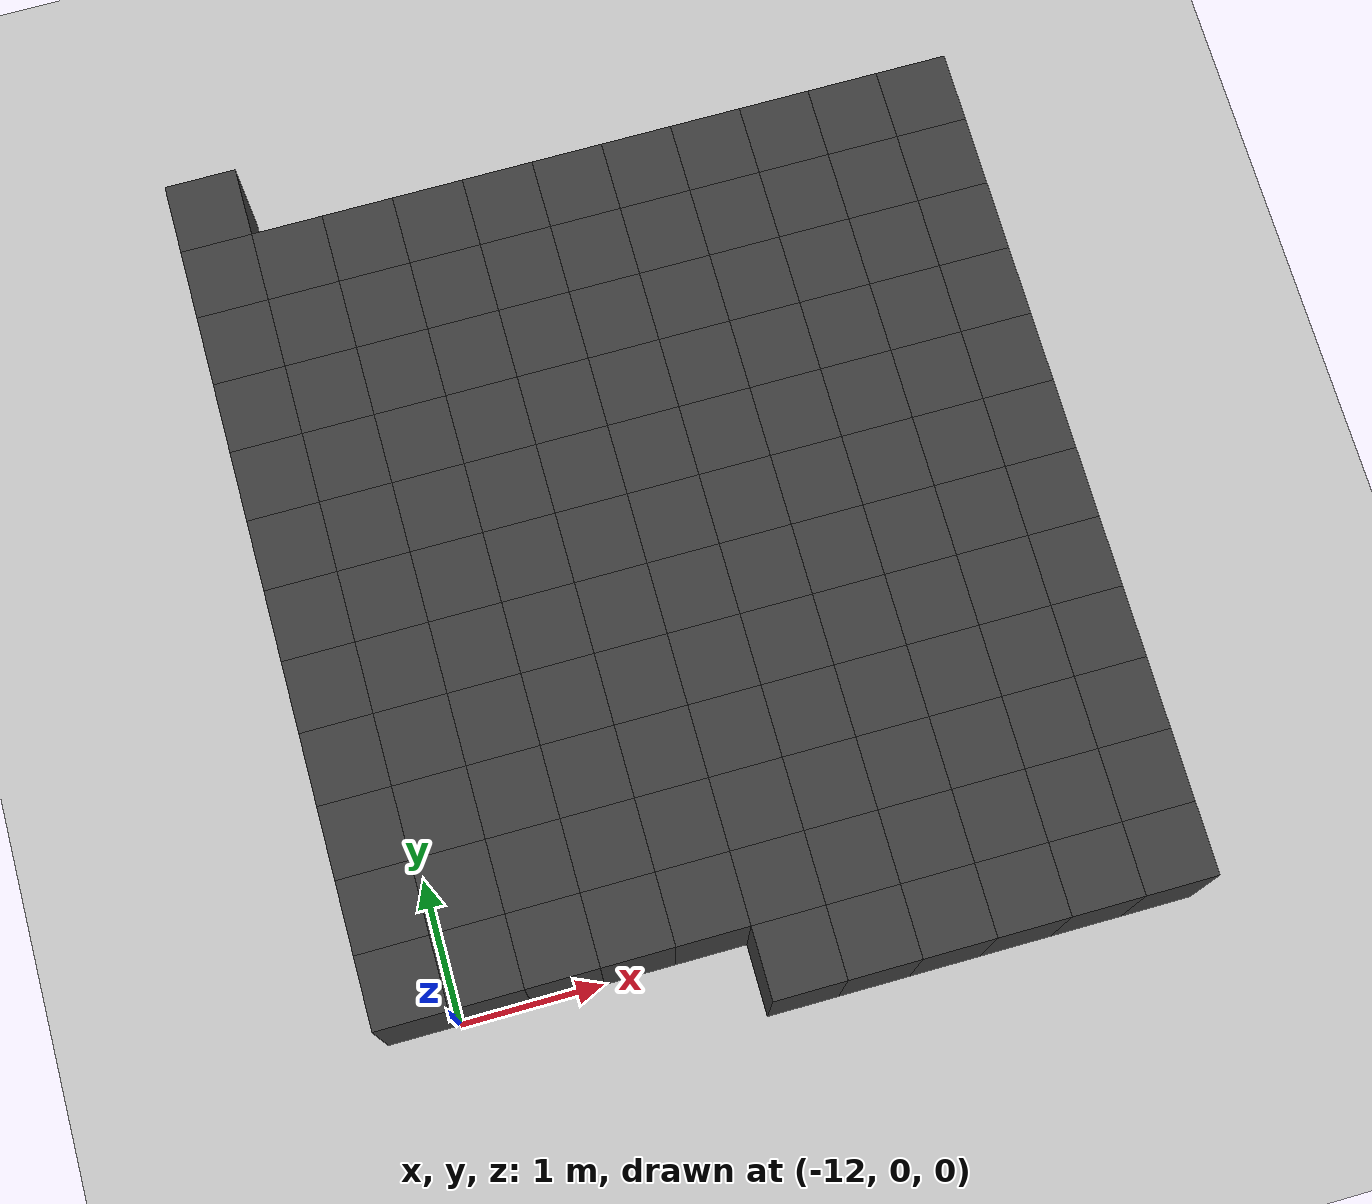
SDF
<sdf version="1.7">
 <world name="map_11515">
  <model name="ground_plane">
   <static>true</static>
   <link name="link">
    <collision name="collision">
     <geometry><plane><normal>0 0 1</normal><size>200 200</size></plane></geometry>
    </collision>
    <visual name="visual">
     <geometry><plane><normal>0 0 1</normal><size>200 200</size></plane></geometry>
     <material><ambient>0.8 0.8 0.8 1</ambient><diffuse>0.8 0.8 0.8 1</diffuse></material>
    </visual>
   </link>
  </model>
  <model name="maze_environment">
   <static>true</static>
   <link name="wall_557">
    <pose>-12.250 5.750 0.500 0 0 0</pose>
    <collision name="col"><geometry><box><size>0.5 0.5 1.0</size></box></geometry></collision>
    <visual name="vis">
     <geometry><box><size>0.5 0.5 1.0</size></box></geometry>
     <material><ambient>0.15 0.15 0.15 1</ambient><diffuse>0.25 0.25 0.25 1</diffuse></material>
    </visual>
   </link>
   <link name="wall_599">
    <pose>-12.250 5.250 0.500 0 0 0</pose>
    <collision name="col"><geometry><box><size>0.5 0.5 1.0</size></box></geometry></collision>
    <visual name="vis">
     <geometry><box><size>0.5 0.5 1.0</size></box></geometry>
     <material><ambient>0.15 0.15 0.15 1</ambient><diffuse>0.25 0.25 0.25 1</diffuse></material>
    </visual>
   </link>
   <link name="wall_600">
    <pose>-11.750 5.250 0.500 0 0 0</pose>
    <collision name="col"><geometry><box><size>0.5 0.5 1.0</size></box></geometry></collision>
    <visual name="vis">
     <geometry><box><size>0.5 0.5 1.0</size></box></geometry>
     <material><ambient>0.15 0.15 0.15 1</ambient><diffuse>0.25 0.25 0.25 1</diffuse></material>
    </visual>
   </link>
   <link name="wall_601">
    <pose>-11.250 5.250 0.500 0 0 0</pose>
    <collision name="col"><geometry><box><size>0.5 0.5 1.0</size></box></geometry></collision>
    <visual name="vis">
     <geometry><box><size>0.5 0.5 1.0</size></box></geometry>
     <material><ambient>0.15 0.15 0.15 1</ambient><diffuse>0.25 0.25 0.25 1</diffuse></material>
    </visual>
   </link>
   <link name="wall_602">
    <pose>-10.750 5.250 0.500 0 0 0</pose>
    <collision name="col"><geometry><box><size>0.5 0.5 1.0</size></box></geometry></collision>
    <visual name="vis">
     <geometry><box><size>0.5 0.5 1.0</size></box></geometry>
     <material><ambient>0.15 0.15 0.15 1</ambient><diffuse>0.25 0.25 0.25 1</diffuse></material>
    </visual>
   </link>
   <link name="wall_603">
    <pose>-10.250 5.250 0.500 0 0 0</pose>
    <collision name="col"><geometry><box><size>0.5 0.5 1.0</size></box></geometry></collision>
    <visual name="vis">
     <geometry><box><size>0.5 0.5 1.0</size></box></geometry>
     <material><ambient>0.15 0.15 0.15 1</ambient><diffuse>0.25 0.25 0.25 1</diffuse></material>
    </visual>
   </link>
   <link name="wall_604">
    <pose>-9.750 5.250 0.500 0 0 0</pose>
    <collision name="col"><geometry><box><size>0.5 0.5 1.0</size></box></geometry></collision>
    <visual name="vis">
     <geometry><box><size>0.5 0.5 1.0</size></box></geometry>
     <material><ambient>0.15 0.15 0.15 1</ambient><diffuse>0.25 0.25 0.25 1</diffuse></material>
    </visual>
   </link>
   <link name="wall_605">
    <pose>-9.250 5.250 0.500 0 0 0</pose>
    <collision name="col"><geometry><box><size>0.5 0.5 1.0</size></box></geometry></collision>
    <visual name="vis">
     <geometry><box><size>0.5 0.5 1.0</size></box></geometry>
     <material><ambient>0.15 0.15 0.15 1</ambient><diffuse>0.25 0.25 0.25 1</diffuse></material>
    </visual>
   </link>
   <link name="wall_606">
    <pose>-8.750 5.250 0.500 0 0 0</pose>
    <collision name="col"><geometry><box><size>0.5 0.5 1.0</size></box></geometry></collision>
    <visual name="vis">
     <geometry><box><size>0.5 0.5 1.0</size></box></geometry>
     <material><ambient>0.15 0.15 0.15 1</ambient><diffuse>0.25 0.25 0.25 1</diffuse></material>
    </visual>
   </link>
   <link name="wall_607">
    <pose>-8.250 5.250 0.500 0 0 0</pose>
    <collision name="col"><geometry><box><size>0.5 0.5 1.0</size></box></geometry></collision>
    <visual name="vis">
     <geometry><box><size>0.5 0.5 1.0</size></box></geometry>
     <material><ambient>0.15 0.15 0.15 1</ambient><diffuse>0.25 0.25 0.25 1</diffuse></material>
    </visual>
   </link>
   <link name="wall_608">
    <pose>-7.750 5.250 0.500 0 0 0</pose>
    <collision name="col"><geometry><box><size>0.5 0.5 1.0</size></box></geometry></collision>
    <visual name="vis">
     <geometry><box><size>0.5 0.5 1.0</size></box></geometry>
     <material><ambient>0.15 0.15 0.15 1</ambient><diffuse>0.25 0.25 0.25 1</diffuse></material>
    </visual>
   </link>
   <link name="wall_609">
    <pose>-7.250 5.250 0.500 0 0 0</pose>
    <collision name="col"><geometry><box><size>0.5 0.5 1.0</size></box></geometry></collision>
    <visual name="vis">
     <geometry><box><size>0.5 0.5 1.0</size></box></geometry>
     <material><ambient>0.15 0.15 0.15 1</ambient><diffuse>0.25 0.25 0.25 1</diffuse></material>
    </visual>
   </link>
   <link name="wall_643">
    <pose>-12.250 4.750 0.500 0 0 0</pose>
    <collision name="col"><geometry><box><size>0.5 0.5 1.0</size></box></geometry></collision>
    <visual name="vis">
     <geometry><box><size>0.5 0.5 1.0</size></box></geometry>
     <material><ambient>0.15 0.15 0.15 1</ambient><diffuse>0.25 0.25 0.25 1</diffuse></material>
    </visual>
   </link>
   <link name="wall_644">
    <pose>-11.750 4.750 0.500 0 0 0</pose>
    <collision name="col"><geometry><box><size>0.5 0.5 1.0</size></box></geometry></collision>
    <visual name="vis">
     <geometry><box><size>0.5 0.5 1.0</size></box></geometry>
     <material><ambient>0.15 0.15 0.15 1</ambient><diffuse>0.25 0.25 0.25 1</diffuse></material>
    </visual>
   </link>
   <link name="wall_645">
    <pose>-11.250 4.750 0.500 0 0 0</pose>
    <collision name="col"><geometry><box><size>0.5 0.5 1.0</size></box></geometry></collision>
    <visual name="vis">
     <geometry><box><size>0.5 0.5 1.0</size></box></geometry>
     <material><ambient>0.15 0.15 0.15 1</ambient><diffuse>0.25 0.25 0.25 1</diffuse></material>
    </visual>
   </link>
   <link name="wall_646">
    <pose>-10.750 4.750 0.500 0 0 0</pose>
    <collision name="col"><geometry><box><size>0.5 0.5 1.0</size></box></geometry></collision>
    <visual name="vis">
     <geometry><box><size>0.5 0.5 1.0</size></box></geometry>
     <material><ambient>0.15 0.15 0.15 1</ambient><diffuse>0.25 0.25 0.25 1</diffuse></material>
    </visual>
   </link>
   <link name="wall_647">
    <pose>-10.250 4.750 0.500 0 0 0</pose>
    <collision name="col"><geometry><box><size>0.5 0.5 1.0</size></box></geometry></collision>
    <visual name="vis">
     <geometry><box><size>0.5 0.5 1.0</size></box></geometry>
     <material><ambient>0.15 0.15 0.15 1</ambient><diffuse>0.25 0.25 0.25 1</diffuse></material>
    </visual>
   </link>
   <link name="wall_648">
    <pose>-9.750 4.750 0.500 0 0 0</pose>
    <collision name="col"><geometry><box><size>0.5 0.5 1.0</size></box></geometry></collision>
    <visual name="vis">
     <geometry><box><size>0.5 0.5 1.0</size></box></geometry>
     <material><ambient>0.15 0.15 0.15 1</ambient><diffuse>0.25 0.25 0.25 1</diffuse></material>
    </visual>
   </link>
   <link name="wall_649">
    <pose>-9.250 4.750 0.500 0 0 0</pose>
    <collision name="col"><geometry><box><size>0.5 0.5 1.0</size></box></geometry></collision>
    <visual name="vis">
     <geometry><box><size>0.5 0.5 1.0</size></box></geometry>
     <material><ambient>0.15 0.15 0.15 1</ambient><diffuse>0.25 0.25 0.25 1</diffuse></material>
    </visual>
   </link>
   <link name="wall_650">
    <pose>-8.750 4.750 0.500 0 0 0</pose>
    <collision name="col"><geometry><box><size>0.5 0.5 1.0</size></box></geometry></collision>
    <visual name="vis">
     <geometry><box><size>0.5 0.5 1.0</size></box></geometry>
     <material><ambient>0.15 0.15 0.15 1</ambient><diffuse>0.25 0.25 0.25 1</diffuse></material>
    </visual>
   </link>
   <link name="wall_651">
    <pose>-8.250 4.750 0.500 0 0 0</pose>
    <collision name="col"><geometry><box><size>0.5 0.5 1.0</size></box></geometry></collision>
    <visual name="vis">
     <geometry><box><size>0.5 0.5 1.0</size></box></geometry>
     <material><ambient>0.15 0.15 0.15 1</ambient><diffuse>0.25 0.25 0.25 1</diffuse></material>
    </visual>
   </link>
   <link name="wall_652">
    <pose>-7.750 4.750 0.500 0 0 0</pose>
    <collision name="col"><geometry><box><size>0.5 0.5 1.0</size></box></geometry></collision>
    <visual name="vis">
     <geometry><box><size>0.5 0.5 1.0</size></box></geometry>
     <material><ambient>0.15 0.15 0.15 1</ambient><diffuse>0.25 0.25 0.25 1</diffuse></material>
    </visual>
   </link>
   <link name="wall_653">
    <pose>-7.250 4.750 0.500 0 0 0</pose>
    <collision name="col"><geometry><box><size>0.5 0.5 1.0</size></box></geometry></collision>
    <visual name="vis">
     <geometry><box><size>0.5 0.5 1.0</size></box></geometry>
     <material><ambient>0.15 0.15 0.15 1</ambient><diffuse>0.25 0.25 0.25 1</diffuse></material>
    </visual>
   </link>
   <link name="wall_683">
    <pose>-12.250 4.250 0.500 0 0 0</pose>
    <collision name="col"><geometry><box><size>0.5 0.5 1.0</size></box></geometry></collision>
    <visual name="vis">
     <geometry><box><size>0.5 0.5 1.0</size></box></geometry>
     <material><ambient>0.15 0.15 0.15 1</ambient><diffuse>0.25 0.25 0.25 1</diffuse></material>
    </visual>
   </link>
   <link name="wall_684">
    <pose>-11.750 4.250 0.500 0 0 0</pose>
    <collision name="col"><geometry><box><size>0.5 0.5 1.0</size></box></geometry></collision>
    <visual name="vis">
     <geometry><box><size>0.5 0.5 1.0</size></box></geometry>
     <material><ambient>0.15 0.15 0.15 1</ambient><diffuse>0.25 0.25 0.25 1</diffuse></material>
    </visual>
   </link>
   <link name="wall_685">
    <pose>-11.250 4.250 0.500 0 0 0</pose>
    <collision name="col"><geometry><box><size>0.5 0.5 1.0</size></box></geometry></collision>
    <visual name="vis">
     <geometry><box><size>0.5 0.5 1.0</size></box></geometry>
     <material><ambient>0.15 0.15 0.15 1</ambient><diffuse>0.25 0.25 0.25 1</diffuse></material>
    </visual>
   </link>
   <link name="wall_686">
    <pose>-10.750 4.250 0.500 0 0 0</pose>
    <collision name="col"><geometry><box><size>0.5 0.5 1.0</size></box></geometry></collision>
    <visual name="vis">
     <geometry><box><size>0.5 0.5 1.0</size></box></geometry>
     <material><ambient>0.15 0.15 0.15 1</ambient><diffuse>0.25 0.25 0.25 1</diffuse></material>
    </visual>
   </link>
   <link name="wall_687">
    <pose>-10.250 4.250 0.500 0 0 0</pose>
    <collision name="col"><geometry><box><size>0.5 0.5 1.0</size></box></geometry></collision>
    <visual name="vis">
     <geometry><box><size>0.5 0.5 1.0</size></box></geometry>
     <material><ambient>0.15 0.15 0.15 1</ambient><diffuse>0.25 0.25 0.25 1</diffuse></material>
    </visual>
   </link>
   <link name="wall_688">
    <pose>-9.750 4.250 0.500 0 0 0</pose>
    <collision name="col"><geometry><box><size>0.5 0.5 1.0</size></box></geometry></collision>
    <visual name="vis">
     <geometry><box><size>0.5 0.5 1.0</size></box></geometry>
     <material><ambient>0.15 0.15 0.15 1</ambient><diffuse>0.25 0.25 0.25 1</diffuse></material>
    </visual>
   </link>
   <link name="wall_689">
    <pose>-9.250 4.250 0.500 0 0 0</pose>
    <collision name="col"><geometry><box><size>0.5 0.5 1.0</size></box></geometry></collision>
    <visual name="vis">
     <geometry><box><size>0.5 0.5 1.0</size></box></geometry>
     <material><ambient>0.15 0.15 0.15 1</ambient><diffuse>0.25 0.25 0.25 1</diffuse></material>
    </visual>
   </link>
   <link name="wall_690">
    <pose>-8.750 4.250 0.500 0 0 0</pose>
    <collision name="col"><geometry><box><size>0.5 0.5 1.0</size></box></geometry></collision>
    <visual name="vis">
     <geometry><box><size>0.5 0.5 1.0</size></box></geometry>
     <material><ambient>0.15 0.15 0.15 1</ambient><diffuse>0.25 0.25 0.25 1</diffuse></material>
    </visual>
   </link>
   <link name="wall_691">
    <pose>-8.250 4.250 0.500 0 0 0</pose>
    <collision name="col"><geometry><box><size>0.5 0.5 1.0</size></box></geometry></collision>
    <visual name="vis">
     <geometry><box><size>0.5 0.5 1.0</size></box></geometry>
     <material><ambient>0.15 0.15 0.15 1</ambient><diffuse>0.25 0.25 0.25 1</diffuse></material>
    </visual>
   </link>
   <link name="wall_692">
    <pose>-7.750 4.250 0.500 0 0 0</pose>
    <collision name="col"><geometry><box><size>0.5 0.5 1.0</size></box></geometry></collision>
    <visual name="vis">
     <geometry><box><size>0.5 0.5 1.0</size></box></geometry>
     <material><ambient>0.15 0.15 0.15 1</ambient><diffuse>0.25 0.25 0.25 1</diffuse></material>
    </visual>
   </link>
   <link name="wall_693">
    <pose>-7.250 4.250 0.500 0 0 0</pose>
    <collision name="col"><geometry><box><size>0.5 0.5 1.0</size></box></geometry></collision>
    <visual name="vis">
     <geometry><box><size>0.5 0.5 1.0</size></box></geometry>
     <material><ambient>0.15 0.15 0.15 1</ambient><diffuse>0.25 0.25 0.25 1</diffuse></material>
    </visual>
   </link>
   <link name="wall_723">
    <pose>-12.250 3.750 0.500 0 0 0</pose>
    <collision name="col"><geometry><box><size>0.5 0.5 1.0</size></box></geometry></collision>
    <visual name="vis">
     <geometry><box><size>0.5 0.5 1.0</size></box></geometry>
     <material><ambient>0.15 0.15 0.15 1</ambient><diffuse>0.25 0.25 0.25 1</diffuse></material>
    </visual>
   </link>
   <link name="wall_724">
    <pose>-11.750 3.750 0.500 0 0 0</pose>
    <collision name="col"><geometry><box><size>0.5 0.5 1.0</size></box></geometry></collision>
    <visual name="vis">
     <geometry><box><size>0.5 0.5 1.0</size></box></geometry>
     <material><ambient>0.15 0.15 0.15 1</ambient><diffuse>0.25 0.25 0.25 1</diffuse></material>
    </visual>
   </link>
   <link name="wall_725">
    <pose>-11.250 3.750 0.500 0 0 0</pose>
    <collision name="col"><geometry><box><size>0.5 0.5 1.0</size></box></geometry></collision>
    <visual name="vis">
     <geometry><box><size>0.5 0.5 1.0</size></box></geometry>
     <material><ambient>0.15 0.15 0.15 1</ambient><diffuse>0.25 0.25 0.25 1</diffuse></material>
    </visual>
   </link>
   <link name="wall_726">
    <pose>-10.750 3.750 0.500 0 0 0</pose>
    <collision name="col"><geometry><box><size>0.5 0.5 1.0</size></box></geometry></collision>
    <visual name="vis">
     <geometry><box><size>0.5 0.5 1.0</size></box></geometry>
     <material><ambient>0.15 0.15 0.15 1</ambient><diffuse>0.25 0.25 0.25 1</diffuse></material>
    </visual>
   </link>
   <link name="wall_727">
    <pose>-10.250 3.750 0.500 0 0 0</pose>
    <collision name="col"><geometry><box><size>0.5 0.5 1.0</size></box></geometry></collision>
    <visual name="vis">
     <geometry><box><size>0.5 0.5 1.0</size></box></geometry>
     <material><ambient>0.15 0.15 0.15 1</ambient><diffuse>0.25 0.25 0.25 1</diffuse></material>
    </visual>
   </link>
   <link name="wall_728">
    <pose>-9.750 3.750 0.500 0 0 0</pose>
    <collision name="col"><geometry><box><size>0.5 0.5 1.0</size></box></geometry></collision>
    <visual name="vis">
     <geometry><box><size>0.5 0.5 1.0</size></box></geometry>
     <material><ambient>0.15 0.15 0.15 1</ambient><diffuse>0.25 0.25 0.25 1</diffuse></material>
    </visual>
   </link>
   <link name="wall_729">
    <pose>-9.250 3.750 0.500 0 0 0</pose>
    <collision name="col"><geometry><box><size>0.5 0.5 1.0</size></box></geometry></collision>
    <visual name="vis">
     <geometry><box><size>0.5 0.5 1.0</size></box></geometry>
     <material><ambient>0.15 0.15 0.15 1</ambient><diffuse>0.25 0.25 0.25 1</diffuse></material>
    </visual>
   </link>
   <link name="wall_730">
    <pose>-8.750 3.750 0.500 0 0 0</pose>
    <collision name="col"><geometry><box><size>0.5 0.5 1.0</size></box></geometry></collision>
    <visual name="vis">
     <geometry><box><size>0.5 0.5 1.0</size></box></geometry>
     <material><ambient>0.15 0.15 0.15 1</ambient><diffuse>0.25 0.25 0.25 1</diffuse></material>
    </visual>
   </link>
   <link name="wall_731">
    <pose>-8.250 3.750 0.500 0 0 0</pose>
    <collision name="col"><geometry><box><size>0.5 0.5 1.0</size></box></geometry></collision>
    <visual name="vis">
     <geometry><box><size>0.5 0.5 1.0</size></box></geometry>
     <material><ambient>0.15 0.15 0.15 1</ambient><diffuse>0.25 0.25 0.25 1</diffuse></material>
    </visual>
   </link>
   <link name="wall_732">
    <pose>-7.750 3.750 0.500 0 0 0</pose>
    <collision name="col"><geometry><box><size>0.5 0.5 1.0</size></box></geometry></collision>
    <visual name="vis">
     <geometry><box><size>0.5 0.5 1.0</size></box></geometry>
     <material><ambient>0.15 0.15 0.15 1</ambient><diffuse>0.25 0.25 0.25 1</diffuse></material>
    </visual>
   </link>
   <link name="wall_733">
    <pose>-7.250 3.750 0.500 0 0 0</pose>
    <collision name="col"><geometry><box><size>0.5 0.5 1.0</size></box></geometry></collision>
    <visual name="vis">
     <geometry><box><size>0.5 0.5 1.0</size></box></geometry>
     <material><ambient>0.15 0.15 0.15 1</ambient><diffuse>0.25 0.25 0.25 1</diffuse></material>
    </visual>
   </link>
   <link name="wall_765">
    <pose>-12.250 3.250 0.500 0 0 0</pose>
    <collision name="col"><geometry><box><size>0.5 0.5 1.0</size></box></geometry></collision>
    <visual name="vis">
     <geometry><box><size>0.5 0.5 1.0</size></box></geometry>
     <material><ambient>0.15 0.15 0.15 1</ambient><diffuse>0.25 0.25 0.25 1</diffuse></material>
    </visual>
   </link>
   <link name="wall_766">
    <pose>-11.750 3.250 0.500 0 0 0</pose>
    <collision name="col"><geometry><box><size>0.5 0.5 1.0</size></box></geometry></collision>
    <visual name="vis">
     <geometry><box><size>0.5 0.5 1.0</size></box></geometry>
     <material><ambient>0.15 0.15 0.15 1</ambient><diffuse>0.25 0.25 0.25 1</diffuse></material>
    </visual>
   </link>
   <link name="wall_767">
    <pose>-11.250 3.250 0.500 0 0 0</pose>
    <collision name="col"><geometry><box><size>0.5 0.5 1.0</size></box></geometry></collision>
    <visual name="vis">
     <geometry><box><size>0.5 0.5 1.0</size></box></geometry>
     <material><ambient>0.15 0.15 0.15 1</ambient><diffuse>0.25 0.25 0.25 1</diffuse></material>
    </visual>
   </link>
   <link name="wall_768">
    <pose>-10.750 3.250 0.500 0 0 0</pose>
    <collision name="col"><geometry><box><size>0.5 0.5 1.0</size></box></geometry></collision>
    <visual name="vis">
     <geometry><box><size>0.5 0.5 1.0</size></box></geometry>
     <material><ambient>0.15 0.15 0.15 1</ambient><diffuse>0.25 0.25 0.25 1</diffuse></material>
    </visual>
   </link>
   <link name="wall_769">
    <pose>-10.250 3.250 0.500 0 0 0</pose>
    <collision name="col"><geometry><box><size>0.5 0.5 1.0</size></box></geometry></collision>
    <visual name="vis">
     <geometry><box><size>0.5 0.5 1.0</size></box></geometry>
     <material><ambient>0.15 0.15 0.15 1</ambient><diffuse>0.25 0.25 0.25 1</diffuse></material>
    </visual>
   </link>
   <link name="wall_770">
    <pose>-9.750 3.250 0.500 0 0 0</pose>
    <collision name="col"><geometry><box><size>0.5 0.5 1.0</size></box></geometry></collision>
    <visual name="vis">
     <geometry><box><size>0.5 0.5 1.0</size></box></geometry>
     <material><ambient>0.15 0.15 0.15 1</ambient><diffuse>0.25 0.25 0.25 1</diffuse></material>
    </visual>
   </link>
   <link name="wall_771">
    <pose>-9.250 3.250 0.500 0 0 0</pose>
    <collision name="col"><geometry><box><size>0.5 0.5 1.0</size></box></geometry></collision>
    <visual name="vis">
     <geometry><box><size>0.5 0.5 1.0</size></box></geometry>
     <material><ambient>0.15 0.15 0.15 1</ambient><diffuse>0.25 0.25 0.25 1</diffuse></material>
    </visual>
   </link>
   <link name="wall_772">
    <pose>-8.750 3.250 0.500 0 0 0</pose>
    <collision name="col"><geometry><box><size>0.5 0.5 1.0</size></box></geometry></collision>
    <visual name="vis">
     <geometry><box><size>0.5 0.5 1.0</size></box></geometry>
     <material><ambient>0.15 0.15 0.15 1</ambient><diffuse>0.25 0.25 0.25 1</diffuse></material>
    </visual>
   </link>
   <link name="wall_773">
    <pose>-8.250 3.250 0.500 0 0 0</pose>
    <collision name="col"><geometry><box><size>0.5 0.5 1.0</size></box></geometry></collision>
    <visual name="vis">
     <geometry><box><size>0.5 0.5 1.0</size></box></geometry>
     <material><ambient>0.15 0.15 0.15 1</ambient><diffuse>0.25 0.25 0.25 1</diffuse></material>
    </visual>
   </link>
   <link name="wall_774">
    <pose>-7.750 3.250 0.500 0 0 0</pose>
    <collision name="col"><geometry><box><size>0.5 0.5 1.0</size></box></geometry></collision>
    <visual name="vis">
     <geometry><box><size>0.5 0.5 1.0</size></box></geometry>
     <material><ambient>0.15 0.15 0.15 1</ambient><diffuse>0.25 0.25 0.25 1</diffuse></material>
    </visual>
   </link>
   <link name="wall_775">
    <pose>-7.250 3.250 0.500 0 0 0</pose>
    <collision name="col"><geometry><box><size>0.5 0.5 1.0</size></box></geometry></collision>
    <visual name="vis">
     <geometry><box><size>0.5 0.5 1.0</size></box></geometry>
     <material><ambient>0.15 0.15 0.15 1</ambient><diffuse>0.25 0.25 0.25 1</diffuse></material>
    </visual>
   </link>
   <link name="wall_799">
    <pose>-12.250 2.750 0.500 0 0 0</pose>
    <collision name="col"><geometry><box><size>0.5 0.5 1.0</size></box></geometry></collision>
    <visual name="vis">
     <geometry><box><size>0.5 0.5 1.0</size></box></geometry>
     <material><ambient>0.15 0.15 0.15 1</ambient><diffuse>0.25 0.25 0.25 1</diffuse></material>
    </visual>
   </link>
   <link name="wall_800">
    <pose>-11.750 2.750 0.500 0 0 0</pose>
    <collision name="col"><geometry><box><size>0.5 0.5 1.0</size></box></geometry></collision>
    <visual name="vis">
     <geometry><box><size>0.5 0.5 1.0</size></box></geometry>
     <material><ambient>0.15 0.15 0.15 1</ambient><diffuse>0.25 0.25 0.25 1</diffuse></material>
    </visual>
   </link>
   <link name="wall_801">
    <pose>-11.250 2.750 0.500 0 0 0</pose>
    <collision name="col"><geometry><box><size>0.5 0.5 1.0</size></box></geometry></collision>
    <visual name="vis">
     <geometry><box><size>0.5 0.5 1.0</size></box></geometry>
     <material><ambient>0.15 0.15 0.15 1</ambient><diffuse>0.25 0.25 0.25 1</diffuse></material>
    </visual>
   </link>
   <link name="wall_802">
    <pose>-10.750 2.750 0.500 0 0 0</pose>
    <collision name="col"><geometry><box><size>0.5 0.5 1.0</size></box></geometry></collision>
    <visual name="vis">
     <geometry><box><size>0.5 0.5 1.0</size></box></geometry>
     <material><ambient>0.15 0.15 0.15 1</ambient><diffuse>0.25 0.25 0.25 1</diffuse></material>
    </visual>
   </link>
   <link name="wall_803">
    <pose>-10.250 2.750 0.500 0 0 0</pose>
    <collision name="col"><geometry><box><size>0.5 0.5 1.0</size></box></geometry></collision>
    <visual name="vis">
     <geometry><box><size>0.5 0.5 1.0</size></box></geometry>
     <material><ambient>0.15 0.15 0.15 1</ambient><diffuse>0.25 0.25 0.25 1</diffuse></material>
    </visual>
   </link>
   <link name="wall_804">
    <pose>-9.750 2.750 0.500 0 0 0</pose>
    <collision name="col"><geometry><box><size>0.5 0.5 1.0</size></box></geometry></collision>
    <visual name="vis">
     <geometry><box><size>0.5 0.5 1.0</size></box></geometry>
     <material><ambient>0.15 0.15 0.15 1</ambient><diffuse>0.25 0.25 0.25 1</diffuse></material>
    </visual>
   </link>
   <link name="wall_805">
    <pose>-9.250 2.750 0.500 0 0 0</pose>
    <collision name="col"><geometry><box><size>0.5 0.5 1.0</size></box></geometry></collision>
    <visual name="vis">
     <geometry><box><size>0.5 0.5 1.0</size></box></geometry>
     <material><ambient>0.15 0.15 0.15 1</ambient><diffuse>0.25 0.25 0.25 1</diffuse></material>
    </visual>
   </link>
   <link name="wall_806">
    <pose>-8.750 2.750 0.500 0 0 0</pose>
    <collision name="col"><geometry><box><size>0.5 0.5 1.0</size></box></geometry></collision>
    <visual name="vis">
     <geometry><box><size>0.5 0.5 1.0</size></box></geometry>
     <material><ambient>0.15 0.15 0.15 1</ambient><diffuse>0.25 0.25 0.25 1</diffuse></material>
    </visual>
   </link>
   <link name="wall_807">
    <pose>-8.250 2.750 0.500 0 0 0</pose>
    <collision name="col"><geometry><box><size>0.5 0.5 1.0</size></box></geometry></collision>
    <visual name="vis">
     <geometry><box><size>0.5 0.5 1.0</size></box></geometry>
     <material><ambient>0.15 0.15 0.15 1</ambient><diffuse>0.25 0.25 0.25 1</diffuse></material>
    </visual>
   </link>
   <link name="wall_808">
    <pose>-7.750 2.750 0.500 0 0 0</pose>
    <collision name="col"><geometry><box><size>0.5 0.5 1.0</size></box></geometry></collision>
    <visual name="vis">
     <geometry><box><size>0.5 0.5 1.0</size></box></geometry>
     <material><ambient>0.15 0.15 0.15 1</ambient><diffuse>0.25 0.25 0.25 1</diffuse></material>
    </visual>
   </link>
   <link name="wall_809">
    <pose>-7.250 2.750 0.500 0 0 0</pose>
    <collision name="col"><geometry><box><size>0.5 0.5 1.0</size></box></geometry></collision>
    <visual name="vis">
     <geometry><box><size>0.5 0.5 1.0</size></box></geometry>
     <material><ambient>0.15 0.15 0.15 1</ambient><diffuse>0.25 0.25 0.25 1</diffuse></material>
    </visual>
   </link>
   <link name="wall_835">
    <pose>-12.250 2.250 0.500 0 0 0</pose>
    <collision name="col"><geometry><box><size>0.5 0.5 1.0</size></box></geometry></collision>
    <visual name="vis">
     <geometry><box><size>0.5 0.5 1.0</size></box></geometry>
     <material><ambient>0.15 0.15 0.15 1</ambient><diffuse>0.25 0.25 0.25 1</diffuse></material>
    </visual>
   </link>
   <link name="wall_836">
    <pose>-11.750 2.250 0.500 0 0 0</pose>
    <collision name="col"><geometry><box><size>0.5 0.5 1.0</size></box></geometry></collision>
    <visual name="vis">
     <geometry><box><size>0.5 0.5 1.0</size></box></geometry>
     <material><ambient>0.15 0.15 0.15 1</ambient><diffuse>0.25 0.25 0.25 1</diffuse></material>
    </visual>
   </link>
   <link name="wall_837">
    <pose>-11.250 2.250 0.500 0 0 0</pose>
    <collision name="col"><geometry><box><size>0.5 0.5 1.0</size></box></geometry></collision>
    <visual name="vis">
     <geometry><box><size>0.5 0.5 1.0</size></box></geometry>
     <material><ambient>0.15 0.15 0.15 1</ambient><diffuse>0.25 0.25 0.25 1</diffuse></material>
    </visual>
   </link>
   <link name="wall_838">
    <pose>-10.750 2.250 0.500 0 0 0</pose>
    <collision name="col"><geometry><box><size>0.5 0.5 1.0</size></box></geometry></collision>
    <visual name="vis">
     <geometry><box><size>0.5 0.5 1.0</size></box></geometry>
     <material><ambient>0.15 0.15 0.15 1</ambient><diffuse>0.25 0.25 0.25 1</diffuse></material>
    </visual>
   </link>
   <link name="wall_839">
    <pose>-10.250 2.250 0.500 0 0 0</pose>
    <collision name="col"><geometry><box><size>0.5 0.5 1.0</size></box></geometry></collision>
    <visual name="vis">
     <geometry><box><size>0.5 0.5 1.0</size></box></geometry>
     <material><ambient>0.15 0.15 0.15 1</ambient><diffuse>0.25 0.25 0.25 1</diffuse></material>
    </visual>
   </link>
   <link name="wall_840">
    <pose>-9.750 2.250 0.500 0 0 0</pose>
    <collision name="col"><geometry><box><size>0.5 0.5 1.0</size></box></geometry></collision>
    <visual name="vis">
     <geometry><box><size>0.5 0.5 1.0</size></box></geometry>
     <material><ambient>0.15 0.15 0.15 1</ambient><diffuse>0.25 0.25 0.25 1</diffuse></material>
    </visual>
   </link>
   <link name="wall_841">
    <pose>-9.250 2.250 0.500 0 0 0</pose>
    <collision name="col"><geometry><box><size>0.5 0.5 1.0</size></box></geometry></collision>
    <visual name="vis">
     <geometry><box><size>0.5 0.5 1.0</size></box></geometry>
     <material><ambient>0.15 0.15 0.15 1</ambient><diffuse>0.25 0.25 0.25 1</diffuse></material>
    </visual>
   </link>
   <link name="wall_842">
    <pose>-8.750 2.250 0.500 0 0 0</pose>
    <collision name="col"><geometry><box><size>0.5 0.5 1.0</size></box></geometry></collision>
    <visual name="vis">
     <geometry><box><size>0.5 0.5 1.0</size></box></geometry>
     <material><ambient>0.15 0.15 0.15 1</ambient><diffuse>0.25 0.25 0.25 1</diffuse></material>
    </visual>
   </link>
   <link name="wall_843">
    <pose>-8.250 2.250 0.500 0 0 0</pose>
    <collision name="col"><geometry><box><size>0.5 0.5 1.0</size></box></geometry></collision>
    <visual name="vis">
     <geometry><box><size>0.5 0.5 1.0</size></box></geometry>
     <material><ambient>0.15 0.15 0.15 1</ambient><diffuse>0.25 0.25 0.25 1</diffuse></material>
    </visual>
   </link>
   <link name="wall_844">
    <pose>-7.750 2.250 0.500 0 0 0</pose>
    <collision name="col"><geometry><box><size>0.5 0.5 1.0</size></box></geometry></collision>
    <visual name="vis">
     <geometry><box><size>0.5 0.5 1.0</size></box></geometry>
     <material><ambient>0.15 0.15 0.15 1</ambient><diffuse>0.25 0.25 0.25 1</diffuse></material>
    </visual>
   </link>
   <link name="wall_845">
    <pose>-7.250 2.250 0.500 0 0 0</pose>
    <collision name="col"><geometry><box><size>0.5 0.5 1.0</size></box></geometry></collision>
    <visual name="vis">
     <geometry><box><size>0.5 0.5 1.0</size></box></geometry>
     <material><ambient>0.15 0.15 0.15 1</ambient><diffuse>0.25 0.25 0.25 1</diffuse></material>
    </visual>
   </link>
   <link name="wall_861">
    <pose>-12.250 1.750 0.500 0 0 0</pose>
    <collision name="col"><geometry><box><size>0.5 0.5 1.0</size></box></geometry></collision>
    <visual name="vis">
     <geometry><box><size>0.5 0.5 1.0</size></box></geometry>
     <material><ambient>0.15 0.15 0.15 1</ambient><diffuse>0.25 0.25 0.25 1</diffuse></material>
    </visual>
   </link>
   <link name="wall_862">
    <pose>-11.750 1.750 0.500 0 0 0</pose>
    <collision name="col"><geometry><box><size>0.5 0.5 1.0</size></box></geometry></collision>
    <visual name="vis">
     <geometry><box><size>0.5 0.5 1.0</size></box></geometry>
     <material><ambient>0.15 0.15 0.15 1</ambient><diffuse>0.25 0.25 0.25 1</diffuse></material>
    </visual>
   </link>
   <link name="wall_863">
    <pose>-11.250 1.750 0.500 0 0 0</pose>
    <collision name="col"><geometry><box><size>0.5 0.5 1.0</size></box></geometry></collision>
    <visual name="vis">
     <geometry><box><size>0.5 0.5 1.0</size></box></geometry>
     <material><ambient>0.15 0.15 0.15 1</ambient><diffuse>0.25 0.25 0.25 1</diffuse></material>
    </visual>
   </link>
   <link name="wall_864">
    <pose>-10.750 1.750 0.500 0 0 0</pose>
    <collision name="col"><geometry><box><size>0.5 0.5 1.0</size></box></geometry></collision>
    <visual name="vis">
     <geometry><box><size>0.5 0.5 1.0</size></box></geometry>
     <material><ambient>0.15 0.15 0.15 1</ambient><diffuse>0.25 0.25 0.25 1</diffuse></material>
    </visual>
   </link>
   <link name="wall_865">
    <pose>-10.250 1.750 0.500 0 0 0</pose>
    <collision name="col"><geometry><box><size>0.5 0.5 1.0</size></box></geometry></collision>
    <visual name="vis">
     <geometry><box><size>0.5 0.5 1.0</size></box></geometry>
     <material><ambient>0.15 0.15 0.15 1</ambient><diffuse>0.25 0.25 0.25 1</diffuse></material>
    </visual>
   </link>
   <link name="wall_866">
    <pose>-9.750 1.750 0.500 0 0 0</pose>
    <collision name="col"><geometry><box><size>0.5 0.5 1.0</size></box></geometry></collision>
    <visual name="vis">
     <geometry><box><size>0.5 0.5 1.0</size></box></geometry>
     <material><ambient>0.15 0.15 0.15 1</ambient><diffuse>0.25 0.25 0.25 1</diffuse></material>
    </visual>
   </link>
   <link name="wall_867">
    <pose>-9.250 1.750 0.500 0 0 0</pose>
    <collision name="col"><geometry><box><size>0.5 0.5 1.0</size></box></geometry></collision>
    <visual name="vis">
     <geometry><box><size>0.5 0.5 1.0</size></box></geometry>
     <material><ambient>0.15 0.15 0.15 1</ambient><diffuse>0.25 0.25 0.25 1</diffuse></material>
    </visual>
   </link>
   <link name="wall_868">
    <pose>-8.750 1.750 0.500 0 0 0</pose>
    <collision name="col"><geometry><box><size>0.5 0.5 1.0</size></box></geometry></collision>
    <visual name="vis">
     <geometry><box><size>0.5 0.5 1.0</size></box></geometry>
     <material><ambient>0.15 0.15 0.15 1</ambient><diffuse>0.25 0.25 0.25 1</diffuse></material>
    </visual>
   </link>
   <link name="wall_869">
    <pose>-8.250 1.750 0.500 0 0 0</pose>
    <collision name="col"><geometry><box><size>0.5 0.5 1.0</size></box></geometry></collision>
    <visual name="vis">
     <geometry><box><size>0.5 0.5 1.0</size></box></geometry>
     <material><ambient>0.15 0.15 0.15 1</ambient><diffuse>0.25 0.25 0.25 1</diffuse></material>
    </visual>
   </link>
   <link name="wall_870">
    <pose>-7.750 1.750 0.500 0 0 0</pose>
    <collision name="col"><geometry><box><size>0.5 0.5 1.0</size></box></geometry></collision>
    <visual name="vis">
     <geometry><box><size>0.5 0.5 1.0</size></box></geometry>
     <material><ambient>0.15 0.15 0.15 1</ambient><diffuse>0.25 0.25 0.25 1</diffuse></material>
    </visual>
   </link>
   <link name="wall_871">
    <pose>-7.250 1.750 0.500 0 0 0</pose>
    <collision name="col"><geometry><box><size>0.5 0.5 1.0</size></box></geometry></collision>
    <visual name="vis">
     <geometry><box><size>0.5 0.5 1.0</size></box></geometry>
     <material><ambient>0.15 0.15 0.15 1</ambient><diffuse>0.25 0.25 0.25 1</diffuse></material>
    </visual>
   </link>
   <link name="wall_897">
    <pose>-12.250 1.250 0.500 0 0 0</pose>
    <collision name="col"><geometry><box><size>0.5 0.5 1.0</size></box></geometry></collision>
    <visual name="vis">
     <geometry><box><size>0.5 0.5 1.0</size></box></geometry>
     <material><ambient>0.15 0.15 0.15 1</ambient><diffuse>0.25 0.25 0.25 1</diffuse></material>
    </visual>
   </link>
   <link name="wall_898">
    <pose>-11.750 1.250 0.500 0 0 0</pose>
    <collision name="col"><geometry><box><size>0.5 0.5 1.0</size></box></geometry></collision>
    <visual name="vis">
     <geometry><box><size>0.5 0.5 1.0</size></box></geometry>
     <material><ambient>0.15 0.15 0.15 1</ambient><diffuse>0.25 0.25 0.25 1</diffuse></material>
    </visual>
   </link>
   <link name="wall_899">
    <pose>-11.250 1.250 0.500 0 0 0</pose>
    <collision name="col"><geometry><box><size>0.5 0.5 1.0</size></box></geometry></collision>
    <visual name="vis">
     <geometry><box><size>0.5 0.5 1.0</size></box></geometry>
     <material><ambient>0.15 0.15 0.15 1</ambient><diffuse>0.25 0.25 0.25 1</diffuse></material>
    </visual>
   </link>
   <link name="wall_900">
    <pose>-10.750 1.250 0.500 0 0 0</pose>
    <collision name="col"><geometry><box><size>0.5 0.5 1.0</size></box></geometry></collision>
    <visual name="vis">
     <geometry><box><size>0.5 0.5 1.0</size></box></geometry>
     <material><ambient>0.15 0.15 0.15 1</ambient><diffuse>0.25 0.25 0.25 1</diffuse></material>
    </visual>
   </link>
   <link name="wall_901">
    <pose>-10.250 1.250 0.500 0 0 0</pose>
    <collision name="col"><geometry><box><size>0.5 0.5 1.0</size></box></geometry></collision>
    <visual name="vis">
     <geometry><box><size>0.5 0.5 1.0</size></box></geometry>
     <material><ambient>0.15 0.15 0.15 1</ambient><diffuse>0.25 0.25 0.25 1</diffuse></material>
    </visual>
   </link>
   <link name="wall_902">
    <pose>-9.750 1.250 0.500 0 0 0</pose>
    <collision name="col"><geometry><box><size>0.5 0.5 1.0</size></box></geometry></collision>
    <visual name="vis">
     <geometry><box><size>0.5 0.5 1.0</size></box></geometry>
     <material><ambient>0.15 0.15 0.15 1</ambient><diffuse>0.25 0.25 0.25 1</diffuse></material>
    </visual>
   </link>
   <link name="wall_903">
    <pose>-9.250 1.250 0.500 0 0 0</pose>
    <collision name="col"><geometry><box><size>0.5 0.5 1.0</size></box></geometry></collision>
    <visual name="vis">
     <geometry><box><size>0.5 0.5 1.0</size></box></geometry>
     <material><ambient>0.15 0.15 0.15 1</ambient><diffuse>0.25 0.25 0.25 1</diffuse></material>
    </visual>
   </link>
   <link name="wall_904">
    <pose>-8.750 1.250 0.500 0 0 0</pose>
    <collision name="col"><geometry><box><size>0.5 0.5 1.0</size></box></geometry></collision>
    <visual name="vis">
     <geometry><box><size>0.5 0.5 1.0</size></box></geometry>
     <material><ambient>0.15 0.15 0.15 1</ambient><diffuse>0.25 0.25 0.25 1</diffuse></material>
    </visual>
   </link>
   <link name="wall_905">
    <pose>-8.250 1.250 0.500 0 0 0</pose>
    <collision name="col"><geometry><box><size>0.5 0.5 1.0</size></box></geometry></collision>
    <visual name="vis">
     <geometry><box><size>0.5 0.5 1.0</size></box></geometry>
     <material><ambient>0.15 0.15 0.15 1</ambient><diffuse>0.25 0.25 0.25 1</diffuse></material>
    </visual>
   </link>
   <link name="wall_906">
    <pose>-7.750 1.250 0.500 0 0 0</pose>
    <collision name="col"><geometry><box><size>0.5 0.5 1.0</size></box></geometry></collision>
    <visual name="vis">
     <geometry><box><size>0.5 0.5 1.0</size></box></geometry>
     <material><ambient>0.15 0.15 0.15 1</ambient><diffuse>0.25 0.25 0.25 1</diffuse></material>
    </visual>
   </link>
   <link name="wall_907">
    <pose>-7.250 1.250 0.500 0 0 0</pose>
    <collision name="col"><geometry><box><size>0.5 0.5 1.0</size></box></geometry></collision>
    <visual name="vis">
     <geometry><box><size>0.5 0.5 1.0</size></box></geometry>
     <material><ambient>0.15 0.15 0.15 1</ambient><diffuse>0.25 0.25 0.25 1</diffuse></material>
    </visual>
   </link>
   <link name="wall_933">
    <pose>-12.250 0.750 0.500 0 0 0</pose>
    <collision name="col"><geometry><box><size>0.5 0.5 1.0</size></box></geometry></collision>
    <visual name="vis">
     <geometry><box><size>0.5 0.5 1.0</size></box></geometry>
     <material><ambient>0.15 0.15 0.15 1</ambient><diffuse>0.25 0.25 0.25 1</diffuse></material>
    </visual>
   </link>
   <link name="wall_934">
    <pose>-11.750 0.750 0.500 0 0 0</pose>
    <collision name="col"><geometry><box><size>0.5 0.5 1.0</size></box></geometry></collision>
    <visual name="vis">
     <geometry><box><size>0.5 0.5 1.0</size></box></geometry>
     <material><ambient>0.15 0.15 0.15 1</ambient><diffuse>0.25 0.25 0.25 1</diffuse></material>
    </visual>
   </link>
   <link name="wall_935">
    <pose>-11.250 0.750 0.500 0 0 0</pose>
    <collision name="col"><geometry><box><size>0.5 0.5 1.0</size></box></geometry></collision>
    <visual name="vis">
     <geometry><box><size>0.5 0.5 1.0</size></box></geometry>
     <material><ambient>0.15 0.15 0.15 1</ambient><diffuse>0.25 0.25 0.25 1</diffuse></material>
    </visual>
   </link>
   <link name="wall_936">
    <pose>-10.750 0.750 0.500 0 0 0</pose>
    <collision name="col"><geometry><box><size>0.5 0.5 1.0</size></box></geometry></collision>
    <visual name="vis">
     <geometry><box><size>0.5 0.5 1.0</size></box></geometry>
     <material><ambient>0.15 0.15 0.15 1</ambient><diffuse>0.25 0.25 0.25 1</diffuse></material>
    </visual>
   </link>
   <link name="wall_937">
    <pose>-10.250 0.750 0.500 0 0 0</pose>
    <collision name="col"><geometry><box><size>0.5 0.5 1.0</size></box></geometry></collision>
    <visual name="vis">
     <geometry><box><size>0.5 0.5 1.0</size></box></geometry>
     <material><ambient>0.15 0.15 0.15 1</ambient><diffuse>0.25 0.25 0.25 1</diffuse></material>
    </visual>
   </link>
   <link name="wall_938">
    <pose>-9.750 0.750 0.500 0 0 0</pose>
    <collision name="col"><geometry><box><size>0.5 0.5 1.0</size></box></geometry></collision>
    <visual name="vis">
     <geometry><box><size>0.5 0.5 1.0</size></box></geometry>
     <material><ambient>0.15 0.15 0.15 1</ambient><diffuse>0.25 0.25 0.25 1</diffuse></material>
    </visual>
   </link>
   <link name="wall_939">
    <pose>-9.250 0.750 0.500 0 0 0</pose>
    <collision name="col"><geometry><box><size>0.5 0.5 1.0</size></box></geometry></collision>
    <visual name="vis">
     <geometry><box><size>0.5 0.5 1.0</size></box></geometry>
     <material><ambient>0.15 0.15 0.15 1</ambient><diffuse>0.25 0.25 0.25 1</diffuse></material>
    </visual>
   </link>
   <link name="wall_940">
    <pose>-8.750 0.750 0.500 0 0 0</pose>
    <collision name="col"><geometry><box><size>0.5 0.5 1.0</size></box></geometry></collision>
    <visual name="vis">
     <geometry><box><size>0.5 0.5 1.0</size></box></geometry>
     <material><ambient>0.15 0.15 0.15 1</ambient><diffuse>0.25 0.25 0.25 1</diffuse></material>
    </visual>
   </link>
   <link name="wall_941">
    <pose>-8.250 0.750 0.500 0 0 0</pose>
    <collision name="col"><geometry><box><size>0.5 0.5 1.0</size></box></geometry></collision>
    <visual name="vis">
     <geometry><box><size>0.5 0.5 1.0</size></box></geometry>
     <material><ambient>0.15 0.15 0.15 1</ambient><diffuse>0.25 0.25 0.25 1</diffuse></material>
    </visual>
   </link>
   <link name="wall_942">
    <pose>-7.750 0.750 0.500 0 0 0</pose>
    <collision name="col"><geometry><box><size>0.5 0.5 1.0</size></box></geometry></collision>
    <visual name="vis">
     <geometry><box><size>0.5 0.5 1.0</size></box></geometry>
     <material><ambient>0.15 0.15 0.15 1</ambient><diffuse>0.25 0.25 0.25 1</diffuse></material>
    </visual>
   </link>
   <link name="wall_943">
    <pose>-7.250 0.750 0.500 0 0 0</pose>
    <collision name="col"><geometry><box><size>0.5 0.5 1.0</size></box></geometry></collision>
    <visual name="vis">
     <geometry><box><size>0.5 0.5 1.0</size></box></geometry>
     <material><ambient>0.15 0.15 0.15 1</ambient><diffuse>0.25 0.25 0.25 1</diffuse></material>
    </visual>
   </link>
   <link name="wall_982">
    <pose>-12.250 0.250 0.500 0 0 0</pose>
    <collision name="col"><geometry><box><size>0.5 0.5 1.0</size></box></geometry></collision>
    <visual name="vis">
     <geometry><box><size>0.5 0.5 1.0</size></box></geometry>
     <material><ambient>0.15 0.15 0.15 1</ambient><diffuse>0.25 0.25 0.25 1</diffuse></material>
    </visual>
   </link>
   <link name="wall_983">
    <pose>-11.750 0.250 0.500 0 0 0</pose>
    <collision name="col"><geometry><box><size>0.5 0.5 1.0</size></box></geometry></collision>
    <visual name="vis">
     <geometry><box><size>0.5 0.5 1.0</size></box></geometry>
     <material><ambient>0.15 0.15 0.15 1</ambient><diffuse>0.25 0.25 0.25 1</diffuse></material>
    </visual>
   </link>
   <link name="wall_984">
    <pose>-11.250 0.250 0.500 0 0 0</pose>
    <collision name="col"><geometry><box><size>0.5 0.5 1.0</size></box></geometry></collision>
    <visual name="vis">
     <geometry><box><size>0.5 0.5 1.0</size></box></geometry>
     <material><ambient>0.15 0.15 0.15 1</ambient><diffuse>0.25 0.25 0.25 1</diffuse></material>
    </visual>
   </link>
   <link name="wall_985">
    <pose>-10.750 0.250 0.500 0 0 0</pose>
    <collision name="col"><geometry><box><size>0.5 0.5 1.0</size></box></geometry></collision>
    <visual name="vis">
     <geometry><box><size>0.5 0.5 1.0</size></box></geometry>
     <material><ambient>0.15 0.15 0.15 1</ambient><diffuse>0.25 0.25 0.25 1</diffuse></material>
    </visual>
   </link>
   <link name="wall_986">
    <pose>-10.250 0.250 0.500 0 0 0</pose>
    <collision name="col"><geometry><box><size>0.5 0.5 1.0</size></box></geometry></collision>
    <visual name="vis">
     <geometry><box><size>0.5 0.5 1.0</size></box></geometry>
     <material><ambient>0.15 0.15 0.15 1</ambient><diffuse>0.25 0.25 0.25 1</diffuse></material>
    </visual>
   </link>
   <link name="wall_987">
    <pose>-9.750 0.250 0.500 0 0 0</pose>
    <collision name="col"><geometry><box><size>0.5 0.5 1.0</size></box></geometry></collision>
    <visual name="vis">
     <geometry><box><size>0.5 0.5 1.0</size></box></geometry>
     <material><ambient>0.15 0.15 0.15 1</ambient><diffuse>0.25 0.25 0.25 1</diffuse></material>
    </visual>
   </link>
   <link name="wall_988">
    <pose>-9.250 0.250 0.500 0 0 0</pose>
    <collision name="col"><geometry><box><size>0.5 0.5 1.0</size></box></geometry></collision>
    <visual name="vis">
     <geometry><box><size>0.5 0.5 1.0</size></box></geometry>
     <material><ambient>0.15 0.15 0.15 1</ambient><diffuse>0.25 0.25 0.25 1</diffuse></material>
    </visual>
   </link>
   <link name="wall_989">
    <pose>-8.750 0.250 0.500 0 0 0</pose>
    <collision name="col"><geometry><box><size>0.5 0.5 1.0</size></box></geometry></collision>
    <visual name="vis">
     <geometry><box><size>0.5 0.5 1.0</size></box></geometry>
     <material><ambient>0.15 0.15 0.15 1</ambient><diffuse>0.25 0.25 0.25 1</diffuse></material>
    </visual>
   </link>
   <link name="wall_990">
    <pose>-8.250 0.250 0.500 0 0 0</pose>
    <collision name="col"><geometry><box><size>0.5 0.5 1.0</size></box></geometry></collision>
    <visual name="vis">
     <geometry><box><size>0.5 0.5 1.0</size></box></geometry>
     <material><ambient>0.15 0.15 0.15 1</ambient><diffuse>0.25 0.25 0.25 1</diffuse></material>
    </visual>
   </link>
   <link name="wall_991">
    <pose>-7.750 0.250 0.500 0 0 0</pose>
    <collision name="col"><geometry><box><size>0.5 0.5 1.0</size></box></geometry></collision>
    <visual name="vis">
     <geometry><box><size>0.5 0.5 1.0</size></box></geometry>
     <material><ambient>0.15 0.15 0.15 1</ambient><diffuse>0.25 0.25 0.25 1</diffuse></material>
    </visual>
   </link>
   <link name="wall_992">
    <pose>-7.250 0.250 0.500 0 0 0</pose>
    <collision name="col"><geometry><box><size>0.5 0.5 1.0</size></box></geometry></collision>
    <visual name="vis">
     <geometry><box><size>0.5 0.5 1.0</size></box></geometry>
     <material><ambient>0.15 0.15 0.15 1</ambient><diffuse>0.25 0.25 0.25 1</diffuse></material>
    </visual>
   </link>
   <link name="wall_1036">
    <pose>-9.750 -0.250 0.500 0 0 0</pose>
    <collision name="col"><geometry><box><size>0.5 0.5 1.0</size></box></geometry></collision>
    <visual name="vis">
     <geometry><box><size>0.5 0.5 1.0</size></box></geometry>
     <material><ambient>0.15 0.15 0.15 1</ambient><diffuse>0.25 0.25 0.25 1</diffuse></material>
    </visual>
   </link>
   <link name="wall_1037">
    <pose>-9.250 -0.250 0.500 0 0 0</pose>
    <collision name="col"><geometry><box><size>0.5 0.5 1.0</size></box></geometry></collision>
    <visual name="vis">
     <geometry><box><size>0.5 0.5 1.0</size></box></geometry>
     <material><ambient>0.15 0.15 0.15 1</ambient><diffuse>0.25 0.25 0.25 1</diffuse></material>
    </visual>
   </link>
   <link name="wall_1038">
    <pose>-8.750 -0.250 0.500 0 0 0</pose>
    <collision name="col"><geometry><box><size>0.5 0.5 1.0</size></box></geometry></collision>
    <visual name="vis">
     <geometry><box><size>0.5 0.5 1.0</size></box></geometry>
     <material><ambient>0.15 0.15 0.15 1</ambient><diffuse>0.25 0.25 0.25 1</diffuse></material>
    </visual>
   </link>
   <link name="wall_1039">
    <pose>-8.250 -0.250 0.500 0 0 0</pose>
    <collision name="col"><geometry><box><size>0.5 0.5 1.0</size></box></geometry></collision>
    <visual name="vis">
     <geometry><box><size>0.5 0.5 1.0</size></box></geometry>
     <material><ambient>0.15 0.15 0.15 1</ambient><diffuse>0.25 0.25 0.25 1</diffuse></material>
    </visual>
   </link>
   <link name="wall_1040">
    <pose>-7.750 -0.250 0.500 0 0 0</pose>
    <collision name="col"><geometry><box><size>0.5 0.5 1.0</size></box></geometry></collision>
    <visual name="vis">
     <geometry><box><size>0.5 0.5 1.0</size></box></geometry>
     <material><ambient>0.15 0.15 0.15 1</ambient><diffuse>0.25 0.25 0.25 1</diffuse></material>
    </visual>
   </link>
   <link name="wall_1041">
    <pose>-7.250 -0.250 0.500 0 0 0</pose>
    <collision name="col"><geometry><box><size>0.5 0.5 1.0</size></box></geometry></collision>
    <visual name="vis">
     <geometry><box><size>0.5 0.5 1.0</size></box></geometry>
     <material><ambient>0.15 0.15 0.15 1</ambient><diffuse>0.25 0.25 0.25 1</diffuse></material>
    </visual>
   </link>
  </model>
 </world>
</sdf>
